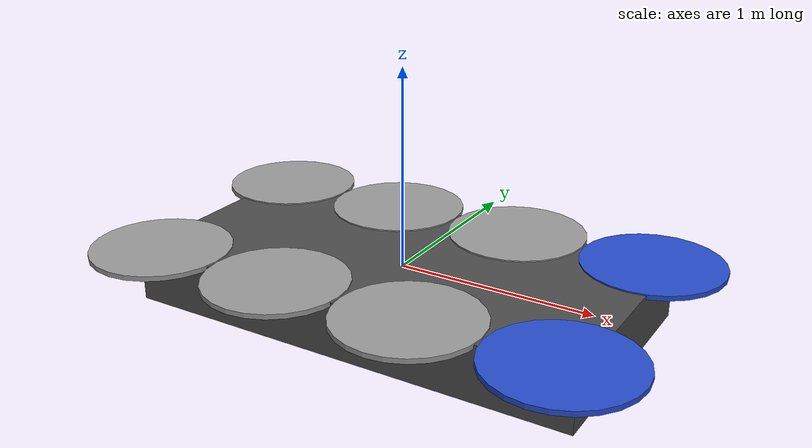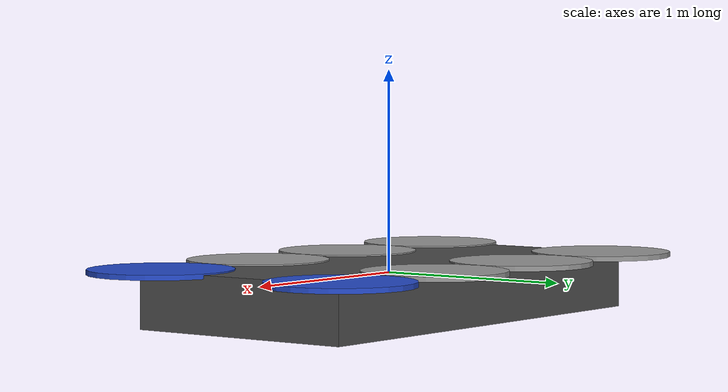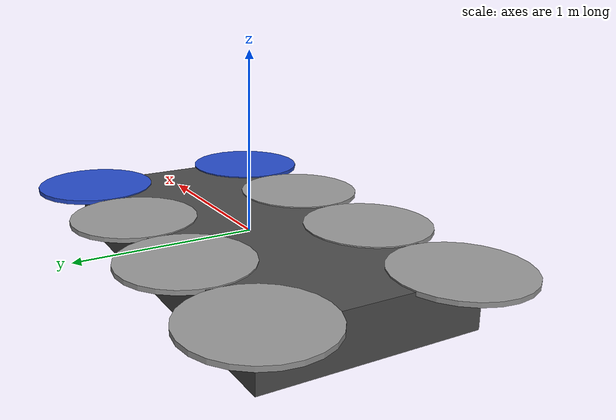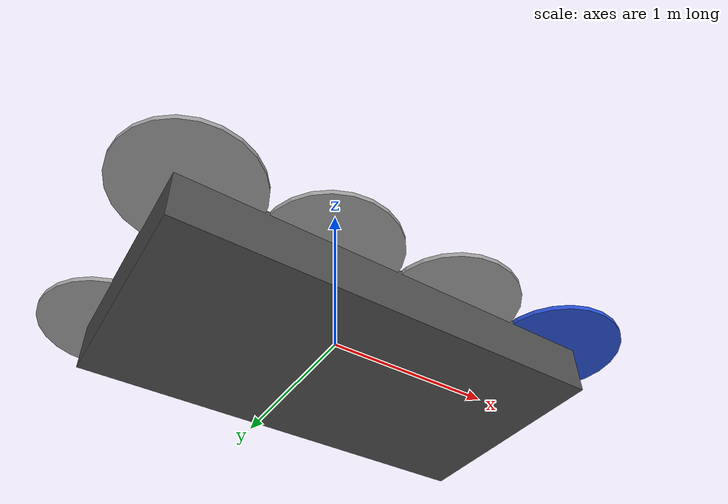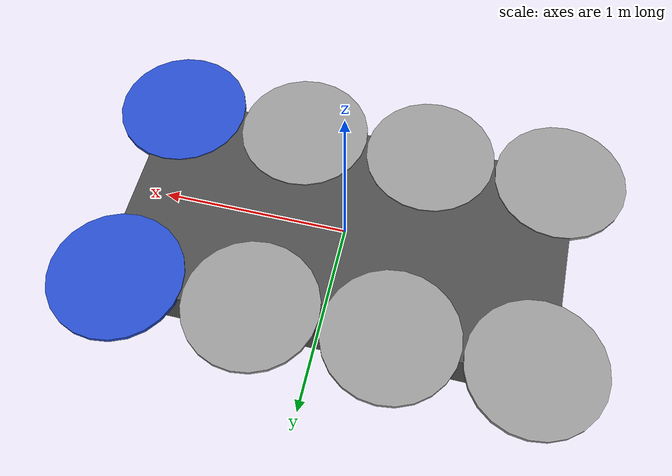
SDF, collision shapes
<?xml version="1.0"?>
<sdf version='1.6'>
  <model name='octocopter3'>
    <link name='base_link'>
      <pose>0 0 0 0 0 -1.57079</pose>
      <inertial>
        <pose>0 0 0 0 0 0</pose>
        <mass>19.0939</mass>
        <inertia>
          <ixx>7.46</ixx>
          <ixy>0</ixy>
          <ixz>0</ixz>
          <iyy>1.52</iyy>
          <iyz>0</iyz>
          <izz>8.88</izz>
        </inertia>
      </inertial>
      <collision name='base_link_collision'>
        <pose>0 0 -0.0835 0 -0 0</pose>
        <geometry>
          <box>
            <size>1.20 2.33 0.28</size>
          </box>
        </geometry>
        <surface>
          <contact>
            <ode>
              <min_depth>0.001</min_depth>
              <max_vel>0</max_vel>
            </ode>
          </contact>
          <friction>
            <ode />
          </friction>
        </surface>
      </collision>
      <visual name='base_link_visual'>
        <pose>0 0 0 0 0 0</pose>
        <geometry>
          <mesh>
            <scale>1 1 1</scale>
            <uri>model://octocopter3/meshes/base_link.STL</uri>
          </mesh>
        </geometry>
        <material>
          <script>
            <name>Gazebo/DarkGrey</name>
            <uri>file://media/materials/scripts/gazebo.material</uri>
          </script>
        </material>
      </visual>
      <gravity>1</gravity>
      <velocity_decay />
      <self_collide>0</self_collide>
    </link>
    <link name='/imu_link'>
      <pose>0 0 0 0 0 0</pose>
      <inertial>
        <pose>0 0 0 0 0 0</pose>
        <mass>0.015</mass>
        <inertia>
          <ixx>1e-05</ixx>
          <ixy>0</ixy>
          <ixz>0</ixz>
          <iyy>1e-05</iyy>
          <iyz>0</iyz>
          <izz>1e-05</izz>
        </inertia>
      </inertial>
    </link>
    <joint name='/imu_joint' type='revolute'>
      <child>/imu_link</child>
      <parent>base_link</parent>
      <axis>
        <xyz>1 0 0</xyz>
        <limit>
          <lower>0</lower>
          <upper>0</upper>
          <effort>0</effort>
          <velocity>0</velocity>
        </limit>
        <dynamics>
          <spring_reference>0</spring_reference>
          <spring_stiffness>0</spring_stiffness>
        </dynamics>
        <use_parent_model_frame>1</use_parent_model_frame>
      </axis>
    </joint>
    <link name='rotor_1'>
      <pose>1.08 -0.543 0.05105 0 0 0</pose>
      <inertial>
        <pose>0 0 0 0 0 0</pose>
        <mass>0.085251</mass>
        <inertia>
          <ixx>1.545e-05</ixx>
          <ixy>0</ixy>
          <ixz>0</ixz>
          <iyy>0.00073574</iyy>
          <iyz>0</iyz>
          <izz>0.00074861</izz>
        </inertia>
      </inertial>
      <collision name='rotor_1_collision'>
        <pose>0 0 0 0 0 0</pose>
        <geometry>
          <cylinder>
            <length>0.025</length>
            <radius>0.3556</radius>
          </cylinder>
        </geometry>
        <surface>
          <contact>
            <ode />
          </contact>
          <friction>
            <ode />
          </friction>
        </surface>
      </collision>
      <visual name='rotor_1_visual'>
        <pose>0 0 -0.02985 0 1.57079 0</pose>
        <geometry>
          <mesh>
            <scale>1 1 1</scale>
            <uri>model://octocopter3/meshes/link1.STL</uri>
          </mesh>
        </geometry>
        <material>
          <script>
            <name>Gazebo/Blue</name>
            <uri>file://media/materials/scripts/gazebo.material</uri>
          </script>
        </material>
      </visual>
      <gravity>1</gravity>
      <velocity_decay />
    </link>
    <joint name='rotor_1_joint' type='revolute'>
      <child>rotor_1</child>
      <parent>base_link</parent>
      <axis>
        <xyz>0 0 1</xyz>
        <limit>
          <lower>-1e+16</lower>
          <upper>1e+16</upper>
        </limit>
        <dynamics>
          <spring_reference>0</spring_reference>
          <spring_stiffness>0</spring_stiffness>
        </dynamics>
        <use_parent_model_frame>1</use_parent_model_frame>
      </axis>
    </joint>
    <link name='rotor_2'>
      <pose>-1.08 0.543 0.05105 0 0 0</pose>
      <inertial>
        <pose>0 0 0 0 0 0</pose>
        <mass>0.085251</mass>
        <inertia>
          <ixx>1.545e-05</ixx>
          <ixy>0</ixy>
          <ixz>0</ixz>
          <iyy>0.00073574</iyy>
          <iyz>0</iyz>
          <izz>0.00074861</izz>
        </inertia>
      </inertial>
      <collision name='rotor_2_collision'>
        <pose>0 0 0 0 0 0</pose>
        <geometry>
          <cylinder>
            <length>0.025</length>
            <radius>0.3556</radius>
          </cylinder>
        </geometry>
        <surface>
          <contact>
            <ode />
          </contact>
          <friction>
            <ode />
          </friction>
        </surface>
      </collision>
      <visual name='rotor_2_visual'>
        <pose>0 0 0 0 1.57079 0</pose>
        <geometry>
          <mesh>
            <scale>1 1 1</scale>
            <uri>model://octocopter3/meshes/link2.STL</uri>
          </mesh>
        </geometry>
        <material>
          <script>
            <name>Gazebo/Grey</name>
            <uri>file://media/materials/scripts/gazebo.material</uri>
          </script>
        </material>
      </visual>
      <gravity>1</gravity>
      <velocity_decay />
    </link>
    <joint name='rotor_2_joint' type='revolute'>
      <child>rotor_2</child>
      <parent>base_link</parent>
      <axis>
        <xyz>0 0 1</xyz>
        <limit>
          <lower>-1e+16</lower>
          <upper>1e+16</upper>
        </limit>
        <dynamics>
          <spring_reference>0</spring_reference>
          <spring_stiffness>0</spring_stiffness>
        </dynamics>
        <use_parent_model_frame>1</use_parent_model_frame>
      </axis>
    </joint>
    <link name='rotor_3'>
      <pose>0.36 -0.543 0.05105 0 0 0</pose>
      <inertial>
        <pose>0 0 0 0 0 0</pose>
        <mass>0.085251</mass>
        <inertia>
          <ixx>1.545e-05</ixx>
          <ixy>0</ixy>
          <ixz>0</ixz>
          <iyy>0.00073574</iyy>
          <iyz>0</iyz>
          <izz>0.00074861</izz>
        </inertia>
      </inertial>
      <collision name='rotor_3_collision'>
        <pose>0 0 0 0 0 0</pose>
        <geometry>
          <cylinder>
            <length>0.025</length>
            <radius>0.3556</radius>
          </cylinder>
        </geometry>
        <surface>
          <contact>
            <ode />
          </contact>
          <friction>
            <ode />
          </friction>
        </surface>
      </collision>
      <visual name='rotor_3_visual'>
        <pose>0 0 -0.02985 0 1.57079 0</pose>
        <geometry>
          <mesh>
            <scale>1 1 1</scale>
            <uri>model://octocopter3/meshes/link3.STL</uri>
          </mesh>
        </geometry>
        <material>
          <script>
            <name>Gazebo/Grey</name>
            <uri>file://media/materials/scripts/gazebo.material</uri>
          </script>
        </material>
      </visual>
      <gravity>1</gravity>
      <velocity_decay />
    </link>
    <joint name='rotor_3_joint' type='revolute'>
      <child>rotor_3</child>
      <parent>base_link</parent>
      <axis>
        <xyz>0 0 1</xyz>
        <limit>
          <lower>-1e+16</lower>
          <upper>1e+16</upper>
        </limit>
        <dynamics>
          <spring_reference>0</spring_reference>
          <spring_stiffness>0</spring_stiffness>
        </dynamics>
        <use_parent_model_frame>1</use_parent_model_frame>
      </axis>
    </joint>
    <link name='rotor_4'>
      <pose>-1.08 -0.543 0.05105 0 0 0</pose>
      <inertial>
        <pose>0 0 0 0 0 0</pose>
        <mass>0.085251</mass>
        <inertia>
          <ixx>1.545e-05</ixx>
          <ixy>0</ixy>
          <ixz>0</ixz>
          <iyy>0.00073574</iyy>
          <iyz>0</iyz>
          <izz>0.00074861</izz>
        </inertia>
      </inertial>
      <collision name='rotor_4_collision'>
        <pose>0 0 0 0 0 0</pose>
        <geometry>
          <cylinder>
            <length>0.025</length>
            <radius>0.3556</radius>
          </cylinder>
        </geometry>
        <surface>
          <contact>
            <ode />
          </contact>
          <friction>
            <ode />
          </friction>
        </surface>
      </collision>
      <visual name='rotor_4_visual'>
        <pose>0 0 0 0 1.57079 0</pose>
        <geometry>
          <mesh>
            <scale>1 1 1</scale>
            <uri>model://octocopter3/meshes/link4.STL</uri>
          </mesh>
        </geometry>
        <material>
          <script>
            <name>Gazebo/Grey</name>
            <uri>file://media/materials/scripts/gazebo.material</uri>
          </script>
        </material>
      </visual>
      <gravity>1</gravity>
      <velocity_decay />
    </link>
    <joint name='rotor_4_joint' type='revolute'>
      <child>rotor_4</child>
      <parent>base_link</parent>
      <axis>
        <xyz>0 0 1</xyz>
        <limit>
          <lower>-1e+16</lower>
          <upper>1e+16</upper>
        </limit>
        <dynamics>
          <spring_reference>0</spring_reference>
          <spring_stiffness>0</spring_stiffness>
        </dynamics>
        <use_parent_model_frame>1</use_parent_model_frame>
      </axis>
    </joint>
    <link name='rotor_5'>
      <pose>1.08 0.543 0.05105 0 0 0</pose>
      <inertial>
        <pose>0 0 0 0 0 0</pose>
        <mass>0.085251</mass>
        <inertia>
          <ixx>1.545e-05</ixx>
          <ixy>0</ixy>
          <ixz>0</ixz>
          <iyy>0.00073574</iyy>
          <iyz>0</iyz>
          <izz>0.00074861</izz>
        </inertia>
      </inertial>
      <collision name='rotor_5_collision'>
        <pose>0 0 0 0 0 0</pose>
        <geometry>
          <cylinder>
            <length>0.025</length>
            <radius>0.3556</radius>
          </cylinder>
        </geometry>
        <surface>
          <contact>
            <ode />
          </contact>
          <friction>
            <ode />
          </friction>
        </surface>
      </collision>
      <visual name='rotor_5_visual'>
        <pose>0 0 -0.02985 0 1.57079 0</pose>
        <geometry>
          <mesh>
            <scale>1 1 1</scale>
            <uri>model://octocopter3/meshes/link5.STL</uri>
          </mesh>
        </geometry>
        <material>
          <script>
            <name>Gazebo/Blue</name>
            <uri>file://media/materials/scripts/gazebo.material</uri>
          </script>
        </material>
      </visual>
      <gravity>1</gravity>
      <velocity_decay />
    </link>
    <joint name='rotor_5_joint' type='revolute'>
      <child>rotor_5</child>
      <parent>base_link</parent>
      <axis>
        <xyz>0 0 1</xyz>
        <limit>
          <lower>-1e+16</lower>
          <upper>1e+16</upper>
        </limit>
        <dynamics>
          <spring_reference>0</spring_reference>
          <spring_stiffness>0</spring_stiffness>
        </dynamics>
        <use_parent_model_frame>1</use_parent_model_frame>
      </axis>
    </joint>
    <link name='rotor_6'>
      <pose>-0.36 0.543 0.05105 0 0 0</pose>
      <inertial>
        <pose>0 0 0 0 0 0</pose>
        <mass>0.085251</mass>
        <inertia>
          <ixx>1.545e-05</ixx>
          <ixy>0</ixy>
          <ixz>0</ixz>
          <iyy>0.00073574</iyy>
          <iyz>0</iyz>
          <izz>0.00074861</izz>
        </inertia>
      </inertial>
      <collision name='rotor_6_collision'>
        <pose>0 0 0 0 0 0</pose>
        <geometry>
          <cylinder>
            <length>0.025</length>
            <radius>0.3556</radius>
          </cylinder>
        </geometry>
        <surface>
          <contact>
            <ode />
          </contact>
          <friction>
            <ode />
          </friction>
        </surface>
      </collision>
      <visual name='rotor_6_visual'>
        <pose>0 0 0 0 1.57079 0</pose>
        <geometry>
          <mesh>
            <scale>1 1 1</scale>
            <uri>model://octocopter3/meshes/link6.STL</uri>
          </mesh>
        </geometry>
        <material>
          <script>
            <name>Gazebo/Grey</name>
            <uri>file://media/materials/scripts/gazebo.material</uri>
          </script>
        </material>
      </visual>
      <gravity>1</gravity>
      <velocity_decay />
    </link>
    <joint name='rotor_6_joint' type='revolute'>
      <child>rotor_6</child>
      <parent>base_link</parent>
      <axis>
        <xyz>0 0 1</xyz>
        <limit>
          <lower>-1e+16</lower>
          <upper>1e+16</upper>
        </limit>
        <dynamics>
          <spring_reference>0</spring_reference>
          <spring_stiffness>0</spring_stiffness>
        </dynamics>
        <use_parent_model_frame>1</use_parent_model_frame>
      </axis>
    </joint>
    <link name='rotor_7'>
      <pose>0.36 0.543 0.05105 0 0 0</pose>
      <inertial>
        <pose>0 0 0 0 0 0</pose>
        <mass>0.085251</mass>
        <inertia>
          <ixx>1.545e-05</ixx>
          <ixy>0</ixy>
          <ixz>0</ixz>
          <iyy>0.00073574</iyy>
          <iyz>0</iyz>
          <izz>0.00074861</izz>
        </inertia>
      </inertial>
      <collision name='rotor_7_collision'>
        <pose>0 0 0 0 0 0</pose>
        <geometry>
          <cylinder>
            <length>0.025</length>
            <radius>0.3556</radius>
          </cylinder>
        </geometry>
        <surface>
          <contact>
            <ode />
          </contact>
          <friction>
            <ode />
          </friction>
        </surface>
      </collision>
      <visual name='rotor_7_visual'>
        <pose>0 0 -0.02985 0 1.57079 0</pose>
        <geometry>
          <mesh>
            <scale>1 1 1</scale>
            <uri>model://octocopter3/meshes/link7.STL</uri>
          </mesh>
        </geometry>
        <material>
          <script>
            <name>Gazebo/Grey</name>
            <uri>file://media/materials/scripts/gazebo.material</uri>
          </script>
        </material>
      </visual>
      <gravity>1</gravity>
      <velocity_decay />
    </link>
    <joint name='rotor_7_joint' type='revolute'>
      <child>rotor_7</child>
      <parent>base_link</parent>
      <axis>
        <xyz>0 0 1</xyz>
        <limit>
          <lower>-1e+16</lower>
          <upper>1e+16</upper>
        </limit>
        <dynamics>
          <spring_reference>0</spring_reference>
          <spring_stiffness>0</spring_stiffness>
        </dynamics>
        <use_parent_model_frame>1</use_parent_model_frame>
      </axis>
    </joint>
    <link name='rotor_8'>
      <pose>-0.36 -0.543 0.05105 0 0 0</pose>
      <inertial>
        <pose>0 0 0 0 0 0</pose>
        <mass>0.085251</mass>
        <inertia>
          <ixx>1.545e-05</ixx>
          <ixy>0</ixy>
          <ixz>0</ixz>
          <iyy>0.00073574</iyy>
          <iyz>0</iyz>
          <izz>0.00074861</izz>
        </inertia>
      </inertial>
      <collision name='rotor_8_collision'>
        <pose>0 0 0 0 0 0</pose>
        <geometry>
          <cylinder>
            <length>0.025</length>
            <radius>0.3556</radius>
          </cylinder>
        </geometry>
        <surface>
          <contact>
            <ode />
          </contact>
          <friction>
            <ode />
          </friction>
        </surface>
      </collision>
      <visual name='rotor_8_visual'>
        <pose>0 0 0 0 1.57079 0</pose>
        <geometry>
          <mesh>
            <scale>1 1 1</scale>
            <uri>model://octocopter3/meshes/link8.STL</uri>
          </mesh>
        </geometry>
        <material>
          <script>
            <name>Gazebo/Grey</name>
            <uri>file://media/materials/scripts/gazebo.material</uri>
          </script>
        </material>
      </visual>
      <gravity>1</gravity>
      <velocity_decay />
    </link>
    <joint name='rotor_8_joint' type='revolute'>
      <child>rotor_8</child>
      <parent>base_link</parent>
      <axis>
        <xyz>0 0 1</xyz>
        <limit>
          <lower>-1e+16</lower>
          <upper>1e+16</upper>
        </limit>
        <dynamics>
          <spring_reference>0</spring_reference>
          <spring_stiffness>0</spring_stiffness>
        </dynamics>
        <use_parent_model_frame>1</use_parent_model_frame>
      </axis>
    </joint>
    <plugin name='rosbag' filename='libgazebo_multirotor_base_plugin.so'>
      <robotNamespace />
      <linkName>base_link</linkName>
      <rotorVelocitySlowdownSim>10</rotorVelocitySlowdownSim>
    </plugin>
    <plugin name='front_right_motor_model' filename='libgazebo_motor_model.so'>
      <robotNamespace />
      <jointName>rotor_1_joint</jointName>
      <linkName>rotor_1</linkName>
      <turningDirection>cw</turningDirection>
      <timeConstantUp>0.0125</timeConstantUp>
      <timeConstantDown>0.025</timeConstantDown>
      <maxRotVelocity>425.47</maxRotVelocity>
      <motorConstant>0.00053</motorConstant>
      <momentConstant>0.0317</momentConstant>
      <commandSubTopic>/gazebo/command/motor_speed</commandSubTopic>
      <motorNumber>0</motorNumber>
      <rotorDragCoefficient>0.00027475</rotorDragCoefficient>
      <rollingMomentCoefficient>1e-06</rollingMomentCoefficient>
      <motorSpeedPubTopic>/motor_speed/0</motorSpeedPubTopic>
      <rotorVelocitySlowdownSim>1</rotorVelocitySlowdownSim>
    </plugin>
    <plugin name='rear_left_motor_model' filename='libgazebo_motor_model.so'>
      <robotNamespace />
      <jointName>rotor_2_joint</jointName>
      <linkName>rotor_2</linkName>
      <turningDirection>cw</turningDirection>
      <timeConstantUp>0.0125</timeConstantUp>
      <timeConstantDown>0.025</timeConstantDown>
      <maxRotVelocity>425.47</maxRotVelocity>
      <motorConstant>0.00053</motorConstant>
      <momentConstant>0.0317</momentConstant>
      <commandSubTopic>/gazebo/command/motor_speed</commandSubTopic>
      <motorNumber>1</motorNumber>
      <rotorDragCoefficient>0.00027475</rotorDragCoefficient>
      <rollingMomentCoefficient>1e-06</rollingMomentCoefficient>
      <motorSpeedPubTopic>/motor_speed/1</motorSpeedPubTopic>
      <rotorVelocitySlowdownSim>1</rotorVelocitySlowdownSim>
    </plugin>
    <plugin name='mid_front_right_motor_model' filename='libgazebo_motor_model.so'>
      <robotNamespace />
      <jointName>rotor_3_joint</jointName>
      <linkName>rotor_3</linkName>
      <turningDirection>ccw</turningDirection>
      <timeConstantUp>0.0125</timeConstantUp>
      <timeConstantDown>0.025</timeConstantDown>
      <maxRotVelocity>425.47</maxRotVelocity>
      <motorConstant>0.00053</motorConstant>
      <momentConstant>0.0317</momentConstant>
      <commandSubTopic>/gazebo/command/motor_speed</commandSubTopic>
      <motorNumber>2</motorNumber>
      <rotorDragCoefficient>0.00027475</rotorDragCoefficient>
      <rollingMomentCoefficient>1e-06</rollingMomentCoefficient>
      <motorSpeedPubTopic>/motor_speed/2</motorSpeedPubTopic>
      <rotorVelocitySlowdownSim>1</rotorVelocitySlowdownSim>
    </plugin>
    <plugin name='rear_right_motor_model' filename='libgazebo_motor_model.so'>
      <robotNamespace />
      <jointName>rotor_4_joint</jointName>
      <linkName>rotor_4</linkName>
      <turningDirection>ccw</turningDirection>
      <timeConstantUp>0.0125</timeConstantUp>
      <timeConstantDown>0.025</timeConstantDown>
      <maxRotVelocity>425.47</maxRotVelocity>
      <motorConstant>0.00053</motorConstant>
      <momentConstant>0.0317</momentConstant>
      <commandSubTopic>/gazebo/command/motor_speed</commandSubTopic>
      <motorNumber>3</motorNumber>
      <rotorDragCoefficient>0.00027475</rotorDragCoefficient>
      <rollingMomentCoefficient>1e-06</rollingMomentCoefficient>
      <motorSpeedPubTopic>/motor_speed/3</motorSpeedPubTopic>
      <rotorVelocitySlowdownSim>1</rotorVelocitySlowdownSim>
    </plugin>
    <plugin name='front_left_motor_model' filename='libgazebo_motor_model.so'>
      <robotNamespace />
      <jointName>rotor_5_joint</jointName>
      <linkName>rotor_5</linkName>
      <turningDirection>ccw</turningDirection>
      <timeConstantUp>0.0125</timeConstantUp>
      <timeConstantDown>0.025</timeConstantDown>
      <maxRotVelocity>425.47</maxRotVelocity>
      <motorConstant>0.00053</motorConstant>
      <momentConstant>0.0317</momentConstant>
      <commandSubTopic>/gazebo/command/motor_speed</commandSubTopic>
      <motorNumber>4</motorNumber>
      <rotorDragCoefficient>0.00027475</rotorDragCoefficient>
      <rollingMomentCoefficient>1e-06</rollingMomentCoefficient>
      <motorSpeedPubTopic>/motor_speed/4</motorSpeedPubTopic>
      <rotorVelocitySlowdownSim>1</rotorVelocitySlowdownSim>
    </plugin>
    <plugin name='mid_rear_left_motor_model' filename='libgazebo_motor_model.so'>
      <robotNamespace />
      <jointName>rotor_6_joint</jointName>
      <linkName>rotor_6</linkName>
      <turningDirection>ccw</turningDirection>
      <timeConstantUp>0.0125</timeConstantUp>
      <timeConstantDown>0.025</timeConstantDown>
      <maxRotVelocity>425.47</maxRotVelocity>
      <motorConstant>0.00053</motorConstant>
      <momentConstant>0.0317</momentConstant>
      <commandSubTopic>/gazebo/command/motor_speed</commandSubTopic>
      <motorNumber>5</motorNumber>
      <rotorDragCoefficient>0.00027475</rotorDragCoefficient>
      <rollingMomentCoefficient>1e-06</rollingMomentCoefficient>
      <motorSpeedPubTopic>/motor_speed/5</motorSpeedPubTopic>
      <rotorVelocitySlowdownSim>1</rotorVelocitySlowdownSim>
    </plugin>
    <plugin name='mid_front_left_motor_model' filename='libgazebo_motor_model.so'>
      <robotNamespace />
      <jointName>rotor_7_joint</jointName>
      <linkName>rotor_7</linkName>
      <turningDirection>cw</turningDirection>
      <timeConstantUp>0.0125</timeConstantUp>
      <timeConstantDown>0.025</timeConstantDown>
      <maxRotVelocity>425.47</maxRotVelocity>
      <motorConstant>0.00053</motorConstant>
      <momentConstant>0.0317</momentConstant>
      <commandSubTopic>/gazebo/command/motor_speed</commandSubTopic>
      <motorNumber>6</motorNumber>
      <rotorDragCoefficient>0.00027475</rotorDragCoefficient>
      <rollingMomentCoefficient>1e-06</rollingMomentCoefficient>
      <motorSpeedPubTopic>/motor_speed/6</motorSpeedPubTopic>
      <rotorVelocitySlowdownSim>1</rotorVelocitySlowdownSim>
    </plugin>
    <plugin name='mid_rear_right_motor_model' filename='libgazebo_motor_model.so'>
      <robotNamespace />
      <jointName>rotor_8_joint</jointName>
      <linkName>rotor_8</linkName>
      <turningDirection>cw</turningDirection>
      <timeConstantUp>0.0125</timeConstantUp>
      <timeConstantDown>0.025</timeConstantDown>
      <maxRotVelocity>425.47</maxRotVelocity>
      <motorConstant>0.00053</motorConstant>
      <momentConstant>0.0317</momentConstant>
      <commandSubTopic>/gazebo/command/motor_speed</commandSubTopic>
      <motorNumber>7</motorNumber>
      <rotorDragCoefficient>0.00027475</rotorDragCoefficient>
      <rollingMomentCoefficient>1e-06</rollingMomentCoefficient>
      <motorSpeedPubTopic>/motor_speed/7</motorSpeedPubTopic>
      <rotorVelocitySlowdownSim>1</rotorVelocitySlowdownSim>
    </plugin>
    <model name='gps0'>
      <link name='link'>
        <pose>0 0 0 0 0 0</pose>
        <inertial>
          <pose>0 0 0 0 0 0</pose>
          <mass>0.01</mass>
          <inertia>
            <ixx>2.1733e-06</ixx>
            <ixy>0</ixy>
            <ixz>0</ixz>
            <iyy>2.1733e-06</iyy>
            <iyz>0</iyz>
            <izz>1.8e-07</izz>
          </inertia>
        </inertial>
        <visual name='visual'>
          <geometry>
            <cylinder>
              <radius>0.01</radius>
              <length>0.002</length>
            </cylinder>
          </geometry>
          <material>
            <script>
              <name>Gazebo/Black</name>
              <uri>__default__</uri>
            </script>
          </material>
        </visual>
        <sensor name='gps' type='gps'>
          <pose>0 0 0 0 0 0</pose>
          <plugin name='gps_plugin' filename='libgazebo_gps_plugin.so'>
            <robotNamespace />
            <gpsNoise>1</gpsNoise>
            <gpsXYRandomWalk>2.0</gpsXYRandomWalk>
            <gpsZRandomWalk>4.0</gpsZRandomWalk>
            <gpsXYNoiseDensity>0.0002</gpsXYNoiseDensity>
            <gpsZNoiseDensity>0.0004</gpsZNoiseDensity>
            <gpsVXYNoiseDensity>0.2</gpsVXYNoiseDensity>
            <gpsVZNoiseDensity>0.4</gpsVZNoiseDensity>
          </plugin>
        </sensor>
      </link>
    </model>
    <joint name='gps0_joint' type='fixed'>
      <parent>base_link</parent>
      <child>gps0::link</child>
    </joint>
    <plugin name='groundtruth_plugin' filename='libgazebo_groundtruth_plugin.so'>
      <robotNamespace />
    </plugin>
    <plugin name='magnetometer_plugin' filename='libgazebo_magnetometer_plugin.so'>
      <robotNamespace />
      <pubRate>100</pubRate>
      <noiseDensity>0.0004</noiseDensity>
      <randomWalk>6.4e-06</randomWalk>
      <biasCorrelationTime>600</biasCorrelationTime>
      <magTopic>/mag</magTopic>
    </plugin>
    <plugin name='barometer_plugin' filename='libgazebo_barometer_plugin.so'>
      <robotNamespace />
      <pubRate>50</pubRate>
      <baroTopic>/baro</baroTopic>
      <baroDriftPaPerSec>0</baroDriftPaPerSec>
    </plugin>
    <plugin name='mavlink_interface' filename='libgazebo_mavlink_interface.so'>
      <robotNamespace />
      <imuSubTopic>/imu</imuSubTopic>
      <magSubTopic>/mag</magSubTopic>
      <baroSubTopic>/baro</baroSubTopic>
      <mavlink_addr>INADDR_ANY</mavlink_addr>
      <mavlink_tcp_port>4560</mavlink_tcp_port>
      <mavlink_udp_port>14560</mavlink_udp_port>
      <serialEnabled>1</serialEnabled>
      <serialDevice>/dev/ttyACM0</serialDevice>
      <baudRate>921600</baudRate>
      <qgc_addr>INADDR_ANY</qgc_addr>
      <qgc_udp_port>14550</qgc_udp_port>
      <sdk_addr>INADDR_ANY</sdk_addr>
      <sdk_udp_port>14540</sdk_udp_port>
      <hil_mode>1</hil_mode>
      <hil_state_level>0</hil_state_level>
      <send_vision_estimation>0</send_vision_estimation>
      <send_odometry>1</send_odometry>
      <enable_lockstep>1</enable_lockstep>
      <use_tcp>1</use_tcp>
      <motorSpeedCommandPubTopic>/gazebo/command/motor_speed</motorSpeedCommandPubTopic>
      <control_channels>
        <channel name='rotor1'>
          <input_index>0</input_index>
          <input_offset>0</input_offset>
          <input_scaling>425.47</input_scaling>
          <zero_position_disarmed>0</zero_position_disarmed>
          <zero_position_armed>0</zero_position_armed>
          <joint_control_type>velocity</joint_control_type>
        </channel>
        <channel name='rotor2'>
          <input_index>1</input_index>
          <input_offset>0</input_offset>
          <input_scaling>425.47</input_scaling>
          <zero_position_disarmed>0</zero_position_disarmed>
          <zero_position_armed>0</zero_position_armed>
          <joint_control_type>velocity</joint_control_type>
        </channel>
        <channel name='rotor3'>
          <input_index>2</input_index>
          <input_offset>0</input_offset>
          <input_scaling>425.47</input_scaling>
          <zero_position_disarmed>0</zero_position_disarmed>
          <zero_position_armed>0</zero_position_armed>
          <joint_control_type>velocity</joint_control_type>
        </channel>
        <channel name='rotor4'>
          <input_index>3</input_index>
          <input_offset>0</input_offset>
          <input_scaling>425.47</input_scaling>
          <zero_position_disarmed>0</zero_position_disarmed>
          <zero_position_armed>0</zero_position_armed>
          <joint_control_type>velocity</joint_control_type>
        </channel>
        <channel name='rotor5'>
          <input_index>4</input_index>
          <input_offset>0</input_offset>
          <input_scaling>425.47</input_scaling>
          <zero_position_disarmed>0</zero_position_disarmed>
          <zero_position_armed>0</zero_position_armed>
          <joint_control_type>velocity</joint_control_type>
        </channel>
        <channel name='rotor6'>
          <input_index>5</input_index>
          <input_offset>0</input_offset>
          <input_scaling>425.47</input_scaling>
          <zero_position_disarmed>0</zero_position_disarmed>
          <zero_position_armed>0</zero_position_armed>
          <joint_control_type>velocity</joint_control_type>
        </channel>
        <channel name='rotor7'>
          <input_index>6</input_index>
          <input_offset>0</input_offset>
          <input_scaling>425.47</input_scaling>
          <zero_position_disarmed>0</zero_position_disarmed>
          <zero_position_armed>0</zero_position_armed>
          <joint_control_type>velocity</joint_control_type>
        </channel>
        <channel name='rotor8'>
          <input_index>7</input_index>
          <input_offset>0</input_offset>
          <input_scaling>425.47</input_scaling>
          <zero_position_disarmed>0</zero_position_disarmed>
          <zero_position_armed>0</zero_position_armed>
          <joint_control_type>velocity</joint_control_type>
        </channel>
      </control_channels>
    </plugin>
    <static>0</static>
    <plugin name='rotors_gazebo_imu_plugin' filename='libgazebo_imu_plugin.so'>
      <robotNamespace />
      <linkName>/imu_link</linkName>
      <imuTopic>/imu</imuTopic>
      <gyroscopeNoiseDensity>0.0003394</gyroscopeNoiseDensity>
      <gyroscopeRandomWalk>3.8785e-05</gyroscopeRandomWalk>
      <gyroscopeBiasCorrelationTime>1000.0</gyroscopeBiasCorrelationTime>
      <gyroscopeTurnOnBiasSigma>0.0087</gyroscopeTurnOnBiasSigma>
      <accelerometerNoiseDensity>0.004</accelerometerNoiseDensity>
      <accelerometerRandomWalk>0.006</accelerometerRandomWalk>
      <accelerometerBiasCorrelationTime>300.0</accelerometerBiasCorrelationTime>
      <accelerometerTurnOnBiasSigma>0.196</accelerometerTurnOnBiasSigma>
    </plugin>
    <plugin name="motor_failure" filename="libgazebo_motor_failure_plugin.so">
      <robotNamespace />
      <ROSMotorNumSubTopic>/motor_failure/motor_number</ROSMotorNumSubTopic>
      <ROSMotorNumSubTopic1>/motor_failure/motor_number1</ROSMotorNumSubTopic1>
      <ROSMotorNumSubTopic2>/motor_failure/motor_number2</ROSMotorNumSubTopic2>
      <ROSMotorNumSubTopic3>/motor_failure/motor_number3</ROSMotorNumSubTopic3>
      <MotorFailureNumPubTopic>/gazebo/motor_failure_num</MotorFailureNumPubTopic>
      <MotorFailureNumPubTopic1>/gazebo/motor_failure_num1</MotorFailureNumPubTopic1>
      <MotorFailureNumPubTopic2>/gazebo/motor_failure_num2</MotorFailureNumPubTopic2>
      <MotorFailureNumPubTopic3>/gazebo/motor_failure_num3</MotorFailureNumPubTopic3>
    </plugin>

    <plugin name="gazebo_ros_front_right" filename="libgazebo_ros_communicate_plugin.so">
      <robotNamespace />
    <communicatemotorSpeedPubTopic>/gazebo/default/octocopter3/motor_speed/</communicatemotorSpeedPubTopic>
      <communicatemotorNumber>0</communicatemotorNumber>
    </plugin>
    <plugin name="gazebo_ros_rear_left" filename="libgazebo_ros_communicate_plugin.so">
      <robotNamespace />
    <communicatemotorSpeedPubTopic>/gazebo/default/octocopter3/motor_speed/</communicatemotorSpeedPubTopic>
      <communicatemotorNumber>1</communicatemotorNumber>
    </plugin>
    <plugin name="gazebo_ros_mid_front_right" filename="libgazebo_ros_communicate_plugin.so">
      <robotNamespace />
    <communicatemotorSpeedPubTopic>/gazebo/default/octocopter3/motor_speed/</communicatemotorSpeedPubTopic>
      <communicatemotorNumber>2</communicatemotorNumber>
    </plugin>
    <plugin name="gazebo_ros_rear_right" filename="libgazebo_ros_communicate_plugin.so">
      <robotNamespace />
    <communicatemotorSpeedPubTopic>/gazebo/default/octocopter3/motor_speed/</communicatemotorSpeedPubTopic>
      <communicatemotorNumber>3</communicatemotorNumber>
    </plugin>
    <plugin name="gazebo_ros_front_left" filename="libgazebo_ros_communicate_plugin.so">
      <robotNamespace />
    <communicatemotorSpeedPubTopic>/gazebo/default/octocopter3/motor_speed/</communicatemotorSpeedPubTopic>
      <communicatemotorNumber>4</communicatemotorNumber>
    </plugin>
    <plugin name="gazebo_ros_mid_rear_left" filename="libgazebo_ros_communicate_plugin.so">
      <robotNamespace />
    <communicatemotorSpeedPubTopic>/gazebo/default/octocopter3/motor_speed/</communicatemotorSpeedPubTopic>
      <communicatemotorNumber>5</communicatemotorNumber>
    </plugin>
    <plugin name="gazebo_ros_mid_front_left" filename="libgazebo_ros_communicate_plugin.so">
      <robotNamespace />
    <communicatemotorSpeedPubTopic>/gazebo/default/octocopter3/motor_speed/</communicatemotorSpeedPubTopic>
      <communicatemotorNumber>6</communicatemotorNumber>
    </plugin>
    <plugin name="gazebo_ros_mid_rear_right" filename="libgazebo_ros_communicate_plugin.so">
      <robotNamespace />
    <communicatemotorSpeedPubTopic>/gazebo/default/octocopter3/motor_speed/</communicatemotorSpeedPubTopic>
      <communicatemotorNumber>7</communicatemotorNumber>
    </plugin>

  </model>
</sdf>
